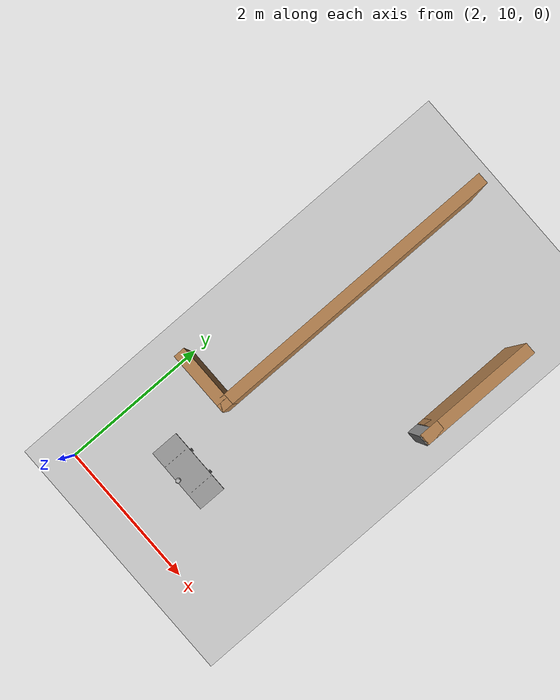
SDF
<sdf version="1.6">
 <world name="default">
  <model name="ground_plane">
   <static>1</static>
   <link name="link">
    <collision name="collision">
     <geometry><plane><normal>0 0 1</normal><size>100 100</size></plane></geometry>
     <surface>
      <contact><collide_bitmask>65535</collide_bitmask></contact>
      <friction><ode><mu>100</mu><mu2>50</mu2></ode></friction>
     </surface>
    </collision>
    <visual name="visual">
     <cast_shadows>0</cast_shadows>
     <geometry><plane><normal>0 0 1</normal><size>100 100</size></plane></geometry>
     <material>
      <script><uri>file://media/materials/scripts/gazebo.material</uri><name>Gazebo/Grey</name></script>
     </material>
    </visual>
   </link>
  </model>
  <model name="ecst_lab_v2">
   <pose>2.38151 7.60499 -4e-06 -3e-06 3e-06 -1.57079</pose>
   <link name="Wall_126">
    <collision name="Wall_126_Collision">
     <geometry><box><size>1.5 0.15 2.5</size></box></geometry>
     <pose>0 0 1.25 0 -0 0</pose>
    </collision>
    <visual name="Wall_126_Visual">
     <pose>0 0 1.25 0 -0 0</pose>
     <geometry><box><size>1.5 0.15 2.5</size></box></geometry>
     <material>
      <script><uri>file://media/materials/scripts/gazebo.material</uri><name>Gazebo/Wood</name></script>
      <ambient>1 1 1 1</ambient>
     </material>
     <meta><layer>0</layer></meta>
    </visual>
    <pose>-6.6085 2.21822 0 0 -0 0</pose>
    <inertial>
     <inertia><ixx>1</ixx><ixy>0</ixy><ixz>0</ixz><iyy>1</iyy><iyz>0</iyz><izz>1</izz></inertia>
     <mass>1</mass>
    </inertial>
   </link>
   <link name="Wall_127">
    <collision name="Wall_127_Collision">
     <geometry><box><size>0.25 0.15 2.5</size></box></geometry>
     <pose>0 0 1.25 0 -0 0</pose>
    </collision>
    <visual name="Wall_127_Visual">
     <pose>0 0 1.25 0 -0 0</pose>
     <geometry><box><size>0.25 0.15 2.5</size></box></geometry>
     <material>
      <script><uri>file://media/materials/scripts/gazebo.material</uri><name>Gazebo/Wood</name></script>
      <ambient>1 1 1 1</ambient>
     </material>
     <meta><layer>0</layer></meta>
    </visual>
    <pose>-5.8835 2.21822 0 0 -0 0</pose>
    <inertial>
     <inertia><ixx>1</ixx><ixy>0</ixy><ixz>0</ixz><iyy>1</iyy><iyz>0</iyz><izz>1</izz></inertia>
     <mass>1</mass>
    </inertial>
   </link>
   <link name="Wall_128">
    <collision name="Wall_128_Collision">
     <geometry><box><size>0.15 0.15 2.5</size></box></geometry>
     <pose>0 0 1.25 0 -0 0</pose>
    </collision>
    <visual name="Wall_128_Visual">
     <pose>0 0 1.25 0 -0 0</pose>
     <geometry><box><size>0.15 0.15 2.5</size></box></geometry>
     <material>
      <script><uri>file://media/materials/scripts/gazebo.material</uri><name>Gazebo/Grey</name></script>
      <ambient>1 1 1 1</ambient>
     </material>
     <meta><layer>0</layer></meta>
    </visual>
    <pose>-5.8335 2.21822 0 0 -0 0</pose>
    <inertial>
     <inertia><ixx>1</ixx><ixy>0</ixy><ixz>0</ixz><iyy>1</iyy><iyz>0</iyz><izz>1</izz></inertia>
     <mass>1</mass>
    </inertial>
   </link>
   <link name="Wall_129">
    <collision name="Wall_129_Collision">
     <geometry><box><size>0.16 0.15 2.5</size></box></geometry>
     <pose>0 0 1.25 0 -0 0</pose>
    </collision>
    <visual name="Wall_129_Visual">
     <pose>0 0 1.25 0 -0 0</pose>
     <geometry><box><size>0.16 0.15 2.5</size></box></geometry>
     <material>
      <script><uri>file://media/materials/scripts/gazebo.material</uri><name>Gazebo/Wood</name></script>
      <ambient>1 1 1 1</ambient>
     </material>
     <meta><layer>0</layer></meta>
    </visual>
    <pose>-5.8285 2.21822 0 0 -0 0</pose>
    <inertial>
     <inertia><ixx>1</ixx><ixy>0</ixy><ixz>0</ixz><iyy>1</iyy><iyz>0</iyz><izz>1</izz></inertia>
     <mass>1</mass>
    </inertial>
   </link>
   <link name="Wall_130">
    <collision name="Wall_130_Collision">
     <geometry><box><size>0.16 0.15 2.5</size></box></geometry>
     <pose>0 0 1.25 0 -0 0</pose>
    </collision>
    <visual name="Wall_130_Visual">
     <pose>0 0 1.25 0 -0 0</pose>
     <geometry><box><size>0.16 0.15 2.5</size></box></geometry>
     <material>
      <script><uri>file://media/materials/scripts/gazebo.material</uri><name>Gazebo/Grey</name></script>
      <ambient>1 1 1 1</ambient>
     </material>
     <meta><layer>0</layer></meta>
    </visual>
    <pose>-5.8185 2.21822 0 0 -0 0</pose>
    <inertial>
     <inertia><ixx>1</ixx><ixy>0</ixy><ixz>0</ixz><iyy>1</iyy><iyz>0</iyz><izz>1</izz></inertia>
     <mass>1</mass>
    </inertial>
   </link>
   <link name="Wall_76">
    <collision name="Wall_76_Collision">
     <geometry><box><size>0.75 0.15 2.5</size></box></geometry>
     <pose>0 0 1.25 0 -0 0</pose>
    </collision>
    <visual name="Wall_76_Visual">
     <pose>0 0 1.25 0 -0 0</pose>
     <geometry><box><size>0.75 0.15 2.5</size></box></geometry>
     <material>
      <script><uri>file://media/materials/scripts/gazebo.material</uri><name>Gazebo/Wood</name></script>
      <ambient>1 1 1 1</ambient>
     </material>
     <meta><layer>0</layer></meta>
    </visual>
    <pose>-4.29657 -0.002274 0 0 -0 1.5708</pose>
    <inertial>
     <inertia><ixx>1</ixx><ixy>0</ixy><ixz>0</ixz><iyy>1</iyy><iyz>0</iyz><izz>1</izz></inertia>
     <mass>1</mass>
    </inertial>
   </link>
   <link name="Wall_77">
    <collision name="Wall_77_Collision">
     <geometry><box><size>0.25 0.15 2.5</size></box></geometry>
     <pose>0 0 1.25 0 -0 0</pose>
    </collision>
    <visual name="Wall_77_Visual">
     <pose>0 0 1.25 0 -0 0</pose>
     <geometry><box><size>0.25 0.15 2.5</size></box></geometry>
     <material>
      <script><uri>file://media/materials/scripts/gazebo.material</uri><name>Gazebo/Wood</name></script>
      <ambient>1 1 1 1</ambient>
     </material>
     <meta><layer>0</layer></meta>
    </visual>
    <pose>-4.29657 0.347726 0 0 -0 1.5708</pose>
    <inertial>
     <inertia><ixx>1</ixx><ixy>0</ixy><ixz>0</ixz><iyy>1</iyy><iyz>0</iyz><izz>1</izz></inertia>
     <mass>1</mass>
    </inertial>
   </link>
   <link name="Wall_78">
    <collision name="Wall_78_Collision">
     <geometry><box><size>4 0.15 2.5</size></box></geometry>
     <pose>0 0 1.25 0 -0 0</pose>
    </collision>
    <visual name="Wall_78_Visual">
     <pose>0 0 1.25 0 -0 0</pose>
     <geometry><box><size>4 0.15 2.5</size></box></geometry>
     <material>
      <script><uri>file://media/materials/scripts/gazebo.material</uri><name>Gazebo/Wood</name></script>
      <ambient>1 1 1 1</ambient>
     </material>
     <meta><layer>0</layer></meta>
    </visual>
    <pose>-6.22157 0.397726 0 0 -0 3.14159</pose>
    <inertial>
     <inertia><ixx>1</ixx><ixy>0</ixy><ixz>0</ixz><iyy>1</iyy><iyz>0</iyz><izz>1</izz></inertia>
     <mass>1</mass>
    </inertial>
   </link>
  </model>
  <model name="ecst_table_v5">
   <static>1</static>
   <link name="link_1">
    <inertial>
     <mass>5</mass>
     <inertia>
      <ixx>0.188383</ixx>
      <ixy>0</ixy>
      <ixz>0</ixz>
      <iyy>0.470263</iyy>
      <iyz>0</iyz>
      <izz>0.402848</izz>
     </inertia>
    </inertial>
    <visual name="visual">
     <geometry>
      <mesh><uri>model://ecst_table/CALI_TABLE_MODEL_METERS_2_updated.stl</uri><scale>1 1 1</scale></mesh>
     </geometry>
     <material>
      <lighting>1</lighting>
      <script><uri>file://media/materials/scripts/gazebo.material</uri><name>Gazebo/Grey</name></script>
      <emissive>0 0 0 1</emissive>
      <shader type="vertex"><normal_map>__default__</normal_map></shader>
      <ambient>0.3 0.3 0.3 1</ambient>
      <diffuse>0.7 0.7 0.7 1</diffuse>
      <specular>0.01 0.01 0.01 1</specular>
     </material>
    </visual>
    <collision name="collision">
     <geometry><box><size>0.906426 0.381 0.554037</size></box></geometry>
     <surface>
      <friction>
       <ode><mu>1</mu><mu2>1</mu2><fdir1>0 0 0</fdir1><slip1>0</slip1><slip2>0</slip2></ode>
       <torsional>
        <coefficient>1</coefficient>
        <patch_radius>0</patch_radius>
        <surface_radius>0</surface_radius>
        <use_patch_radius>1</use_patch_radius>
        <ode><slip>0</slip></ode>
       </torsional>
      </friction>
      <bounce><restitution_coefficient>0</restitution_coefficient><threshold>1e+06</threshold></bounce>
      <contact>
       <collide_without_contact>0</collide_without_contact>
       <collide_without_contact_bitmask>1</collide_without_contact_bitmask>
       <collide_bitmask>1</collide_bitmask>
       <ode>
        <soft_cfm>0</soft_cfm>
        <soft_erp>0.2</soft_erp>
        <kp>1e+13</kp>
        <kd>1</kd>
        <max_vel>0.01</max_vel>
        <min_depth>0</min_depth>
       </ode>
       <bullet>
        <split_impulse>1</split_impulse>
        <split_impulse_penetration_threshold>-0.01</split_impulse_penetration_threshold>
        <soft_cfm>0</soft_cfm>
        <soft_erp>0.2</soft_erp>
        <kp>1e+13</kp>
        <kd>1</kd>
       </bullet>
      </contact>
     </surface>
    </collision>
   </link>
   <pose>3.08887 10.975 0.277013 0 -1.2e-05 -0.003042</pose>
  </model>
  <model name="coke_can">
   <link name="link">
    <inertial>
     <pose>0 0 0.06 0 -0 0</pose>
     <mass>0.39</mass>
     <inertia>
      <ixx>0.00055575</ixx>
      <ixy>0</ixy>
      <ixz>0</ixz>
      <iyy>0.00055575</iyy>
      <iyz>0</iyz>
      <izz>0.0001755</izz>
     </inertia>
    </inertial>
    <collision name="collision">
     <pose>0.003937 0.004724 -0.18 0 -0 0</pose>
     <geometry><mesh><uri>model://coke_can/meshes/coke_can.dae</uri></mesh></geometry>
     <surface>
      <friction><ode><mu>1</mu><mu2>1</mu2></ode></friction>
      <contact><ode><kp>1e+07</kp><kd>1</kd><min_depth>0.001</min_depth><max_vel>0.1</max_vel></ode></contact>
     </surface>
    </collision>
    <visual name="visual">
     <pose>0.003937 0.004724 -0.18 0 -0 0</pose>
     <geometry><mesh><uri>model://coke_can/meshes/coke_can.dae</uri></mesh></geometry>
    </visual>
   </link>
   <pose>3.09491 10.8104 0.551445 -0.004619 0.001634 0.020149</pose>
  </model>
 </world>
</sdf>
